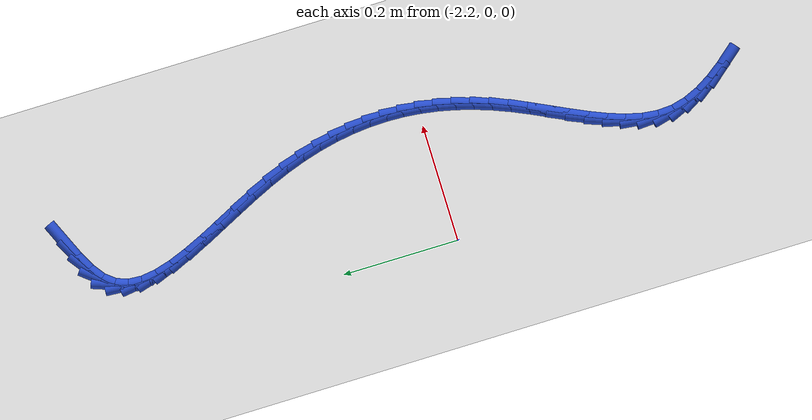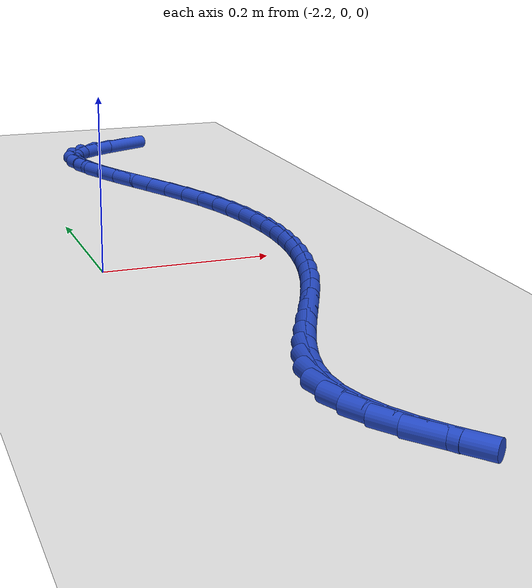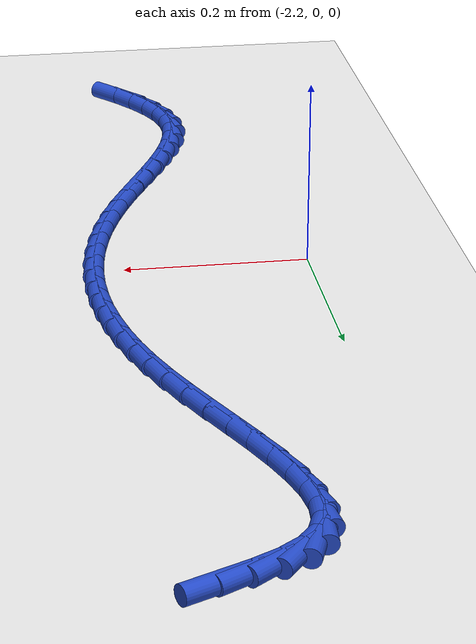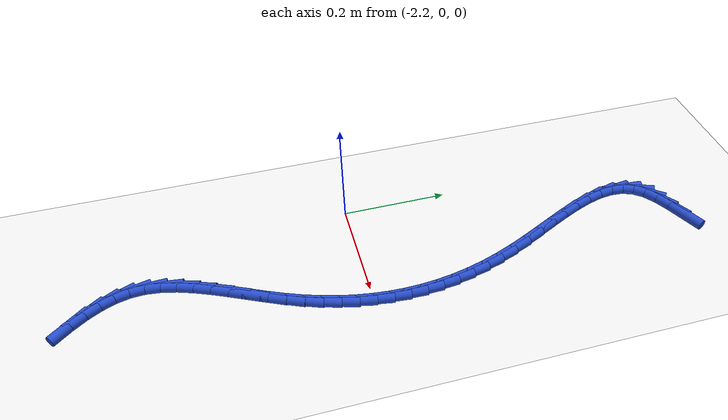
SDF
<sdf version="1.6">
 <world name="default">
  <model name="ground_plane">
   <static>1</static>
   <link name="link">
    <collision name="collision">
     <geometry><plane><normal>0 0 1</normal><size>100 100</size></plane></geometry>
     <surface><friction><ode><mu>100</mu><mu2>50</mu2></ode></friction></surface>
    </collision>
    <visual name="visual">
     <cast_shadows>0</cast_shadows>
     <geometry><plane><normal>0 0 1</normal><size>100 100</size></plane></geometry>
     <material>
      <script><uri>file://media/materials/scripts/gazebo.material</uri><name>Gazebo/WhiteGlow</name></script>
     </material>
    </visual>
   </link>
  </model>
  <model name="line">
   <link name="link_106">
    <pose>-2.011582424260394 0.6309163841337786 0.01 0 1.57 0.416559765220719</pose>
    <collision name="collision">
     <geometry><cylinder><radius>0.01</radius><length>0.08</length></cylinder></geometry>
    </collision>
    <visual name="visual">
     <material>
      <script><name>Gazebo/Blue</name><uri>file://media/materials/scripts/gazebo.material</uri></script>
     </material>
     <geometry><cylinder><radius>0.01</radius><length>0.08</length></cylinder></geometry>
    </visual>
   </link>
   <link name="link_107">
    <pose>-2.0407137078428197 0.6180271734563081 0.01 0 1.57 0.4868734654337942</pose>
    <collision name="collision">
     <geometry><cylinder><radius>0.01</radius><length>0.08</length></cylinder></geometry>
    </collision>
    <visual name="visual">
     <material>
      <script><name>Gazebo/Blue</name><uri>file://media/materials/scripts/gazebo.material</uri></script>
     </material>
     <geometry><cylinder><radius>0.01</radius><length>0.08</length></cylinder></geometry>
    </visual>
   </link>
   <link name="link_108">
    <pose>-2.0666683367514334 0.6042873437456167 0.01 0 1.57 0.6333787010661827</pose>
    <collision name="collision">
     <geometry><cylinder><radius>0.01</radius><length>0.08</length></cylinder></geometry>
    </collision>
    <visual name="visual">
     <material>
      <script><name>Gazebo/Blue</name><uri>file://media/materials/scripts/gazebo.material</uri></script>
     </material>
     <geometry><cylinder><radius>0.01</radius><length>0.08</length></cylinder></geometry>
    </visual>
   </link>
   <link name="link_109">
    <pose>-2.0878321514224747 0.5887467043664991 0.01 0 1.57 0.8907326659137043</pose>
    <collision name="collision">
     <geometry><cylinder><radius>0.01</radius><length>0.08</length></cylinder></geometry>
    </collision>
    <visual name="visual">
     <material>
      <script><name>Gazebo/Blue</name><uri>file://media/materials/scripts/gazebo.material</uri></script>
     </material>
     <geometry><cylinder><radius>0.01</radius><length>0.08</length></cylinder></geometry>
    </visual>
   </link>
   <link name="link_110">
    <pose>-2.1026154276303477 0.5704679142896184 0.01 0 1.57 1.2200347028196394</pose>
    <collision name="collision">
     <geometry><cylinder><radius>0.01</radius><length>0.08</length></cylinder></geometry>
    </collision>
    <visual name="visual">
     <material>
      <script><name>Gazebo/Blue</name><uri>file://media/materials/scripts/gazebo.material</uri></script>
     </material>
     <geometry><cylinder><radius>0.01</radius><length>0.08</length></cylinder></geometry>
    </visual>
   </link>
   <link name="link_111">
    <pose>-2.1104514790829505 0.5490516088436298 0.01 0 1.57 1.500958287772405</pose>
    <collision name="collision">
     <geometry><cylinder><radius>0.01</radius><length>0.08</length></cylinder></geometry>
    </collision>
    <visual name="visual">
     <material>
      <script><name>Gazebo/Blue</name><uri>file://media/materials/scripts/gazebo.material</uri></script>
     </material>
     <geometry><cylinder><radius>0.01</radius><length>0.08</length></cylinder></geometry>
    </visual>
   </link>
   <link name="link_112">
    <pose>-2.1121464980933644 0.5248203674882923 0.01 0 1.57 -1.4387192489499185</pose>
    <collision name="collision">
     <geometry><cylinder><radius>0.01</radius><length>0.08</length></cylinder></geometry>
    </collision>
    <visual name="visual">
     <material>
      <script><name>Gazebo/Blue</name><uri>file://media/materials/scripts/gazebo.material</uri></script>
     </material>
     <geometry><cylinder><radius>0.01</radius><length>0.08</length></cylinder></geometry>
    </visual>
   </link>
   <link name="link_113">
    <pose>-2.108602983507826 0.49814741359036196 0.01 0 1.57 -1.3032178489548198</pose>
    <collision name="collision">
     <geometry><cylinder><radius>0.01</radius><length>0.08</length></cylinder></geometry>
    </collision>
    <visual name="visual">
     <material>
      <script><name>Gazebo/Blue</name><uri>file://media/materials/scripts/gazebo.material</uri></script>
     </material>
     <geometry><cylinder><radius>0.01</radius><length>0.08</length></cylinder></geometry>
    </visual>
   </link>
   <link name="link_114">
    <pose>-2.100723434172573 0.4694059705165951 0.01 0 1.57 -1.214928853650688</pose>
    <collision name="collision">
     <geometry><cylinder><radius>0.01</radius><length>0.08</length></cylinder></geometry>
    </collision>
    <visual name="visual">
     <material>
      <script><name>Gazebo/Blue</name><uri>file://media/materials/scripts/gazebo.material</uri></script>
     </material>
     <geometry><cylinder><radius>0.01</radius><length>0.08</length></cylinder></geometry>
    </visual>
   </link>
   <link name="link_115">
    <pose>-2.0894103489338423 0.43896926163374805 0.01 0 1.57 -1.1597168554635666</pose>
    <collision name="collision">
     <geometry><cylinder><radius>0.01</radius><length>0.08</length></cylinder></geometry>
    </collision>
    <visual name="visual">
     <material>
      <script><name>Gazebo/Blue</name><uri>file://media/materials/scripts/gazebo.material</uri></script>
     </material>
     <geometry><cylinder><radius>0.01</radius><length>0.08</length></cylinder></geometry>
    </visual>
   </link>
   <link name="link_116">
    <pose>-2.075566226637873 0.40721051030857724 0.01 0 1.57 -1.1289316148877377</pose>
    <collision name="collision">
     <geometry><cylinder><radius>0.01</radius><length>0.08</length></cylinder></geometry>
    </collision>
    <visual name="visual">
     <material>
      <script><name>Gazebo/Blue</name><uri>file://media/materials/scripts/gazebo.material</uri></script>
     </material>
     <geometry><cylinder><radius>0.01</radius><length>0.08</length></cylinder></geometry>
    </visual>
   </link>
   <link name="link_117">
    <pose>-2.0600935661309006 0.3745029399078387 0.01 0 1.57 -1.1178504903717577</pose>
    <collision name="collision">
     <geometry><cylinder><radius>0.01</radius><length>0.08</length></cylinder></geometry>
    </collision>
    <visual name="visual">
     <material>
      <script><name>Gazebo/Blue</name><uri>file://media/materials/scripts/gazebo.material</uri></script>
     </material>
     <geometry><cylinder><radius>0.01</radius><length>0.08</length></cylinder></geometry>
    </visual>
   </link>
   <link name="link_118">
    <pose>-2.0438948662591634 0.3412197737982887 0.01 0 1.57 -1.124510511750247</pose>
    <collision name="collision">
     <geometry><cylinder><radius>0.01</radius><length>0.08</length></cylinder></geometry>
    </collision>
    <visual name="visual">
     <material>
      <script><name>Gazebo/Blue</name><uri>file://media/materials/scripts/gazebo.material</uri></script>
     </material>
     <geometry><cylinder><radius>0.01</radius><length>0.08</length></cylinder></geometry>
    </visual>
   </link>
   <link name="link_119">
    <pose>-2.027872625868899 0.30773423534668376 0.01 0 1.57 -1.149149400280007</pose>
    <collision name="collision">
     <geometry><cylinder><radius>0.01</radius><length>0.08</length></cylinder></geometry>
    </collision>
    <visual name="visual">
     <material>
      <script><name>Gazebo/Blue</name><uri>file://media/materials/scripts/gazebo.material</uri></script>
     </material>
     <geometry><cylinder><radius>0.01</radius><length>0.08</length></cylinder></geometry>
    </visual>
   </link>
   <link name="link_120">
    <pose>-2.0129293438063445 0.27441954791978046 0.01 0 1.57 -1.1924186582967617</pose>
    <collision name="collision">
     <geometry><cylinder><radius>0.01</radius><length>0.08</length></cylinder></geometry>
    </collision>
    <visual name="visual">
     <material>
      <script><name>Gazebo/Blue</name><uri>file://media/materials/scripts/gazebo.material</uri></script>
     </material>
     <geometry><cylinder><radius>0.01</radius><length>0.08</length></cylinder></geometry>
    </visual>
   </link>
   <link name="link_121">
    <pose>-1.9998874625179919 0.24161249036313415 0.01 0 1.57 -1.2444204902058373</pose>
    <collision name="collision">
     <geometry><cylinder><radius>0.01</radius><length>0.08</length></cylinder></geometry>
    </collision>
    <visual name="visual">
     <material>
      <script><name>Gazebo/Blue</name><uri>file://media/materials/scripts/gazebo.material</uri></script>
     </material>
     <geometry><cylinder><radius>0.01</radius><length>0.08</length></cylinder></geometry>
    </visual>
   </link>
   <link name="link_122">
    <pose>-1.9889775239059289 0.2093803873374091 0.01 0 1.57 -1.299722797258593</pose>
    <collision name="collision">
     <geometry><cylinder><radius>0.01</radius><length>0.08</length></cylinder></geometry>
    </collision>
    <visual name="visual">
     <material>
      <script><name>Gazebo/Blue</name><uri>file://media/materials/scripts/gazebo.material</uri></script>
     </material>
     <geometry><cylinder><radius>0.01</radius><length>0.08</length></cylinder></geometry>
    </visual>
   </link>
   <link name="link_123">
    <pose>-1.9801646868152654 0.1776697516946329 0.01 0 1.57 -1.3579638281475304</pose>
    <collision name="collision">
     <geometry><cylinder><radius>0.01</radius><length>0.08</length></cylinder></geometry>
    </collision>
    <visual name="visual">
     <material>
      <script><name>Gazebo/Blue</name><uri>file://media/materials/scripts/gazebo.material</uri></script>
     </material>
     <geometry><cylinder><radius>0.01</radius><length>0.08</length></cylinder></geometry>
    </visual>
   </link>
   <link name="link_124">
    <pose>-1.9734128563225226 0.14642652552676827 0.01 0 1.57 -1.418658414684836</pose>
    <collision name="collision">
     <geometry><cylinder><radius>0.01</radius><length>0.08</length></cylinder></geometry>
    </collision>
    <visual name="visual">
     <material>
      <script><name>Gazebo/Blue</name><uri>file://media/materials/scripts/gazebo.material</uri></script>
     </material>
     <geometry><cylinder><radius>0.01</radius><length>0.08</length></cylinder></geometry>
    </visual>
   </link>
   <link name="link_125">
    <pose>-1.968685937504221 0.11559665092577781 0.01 0 1.57 -1.4811765195036062</pose>
    <collision name="collision">
     <geometry><cylinder><radius>0.01</radius><length>0.08</length></cylinder></geometry>
    </collision>
    <visual name="visual">
     <material>
      <script><name>Gazebo/Blue</name><uri>file://media/materials/scripts/gazebo.material</uri></script>
     </material>
     <geometry><cylinder><radius>0.01</radius><length>0.08</length></cylinder></geometry>
    </visual>
   </link>
   <link name="link_126">
    <pose>-1.9659478354368818 0.08512606998362414 0.01 0 1.57 -1.5447663627294603</pose>
    <collision name="collision">
     <geometry><cylinder><radius>0.01</radius><length>0.08</length></cylinder></geometry>
    </collision>
    <visual name="visual">
     <material>
      <script><name>Gazebo/Blue</name><uri>file://media/materials/scripts/gazebo.material</uri></script>
     </material>
     <geometry><cylinder><radius>0.01</radius><length>0.08</length></cylinder></geometry>
    </visual>
   </link>
   <link name="link_127">
    <pose>-1.9651624551970255 0.05496072479226991 0.01 0 1.57 1.532997919942892</pose>
    <collision name="collision">
     <geometry><cylinder><radius>0.01</radius><length>0.08</length></cylinder></geometry>
    </collision>
    <visual name="visual">
     <material>
      <script><name>Gazebo/Blue</name><uri>file://media/materials/scripts/gazebo.material</uri></script>
     </material>
     <geometry><cylinder><radius>0.01</radius><length>0.08</length></cylinder></geometry>
    </visual>
   </link>
   <link name="link_128">
    <pose>-1.9662937018611735 0.02504655744367777 0.01 0 1.57 1.4697926893368156</pose>
    <collision name="collision">
     <geometry><cylinder><radius>0.01</radius><length>0.08</length></cylinder></geometry>
    </collision>
    <visual name="visual">
     <material>
      <script><name>Gazebo/Blue</name><uri>file://media/materials/scripts/gazebo.material</uri></script>
     </material>
     <geometry><cylinder><radius>0.01</radius><length>0.08</length></cylinder></geometry>
    </visual>
   </link>
   <link name="link_129">
    <pose>-1.9693054805058468 -0.004670489970189699 0.01 0 1.57 1.40804309663711</pose>
    <collision name="collision">
     <geometry><cylinder><radius>0.01</radius><length>0.08</length></cylinder></geometry>
    </collision>
    <visual name="visual">
     <material>
      <script><name>Gazebo/Blue</name><uri>file://media/materials/scripts/gazebo.material</uri></script>
     </material>
     <geometry><cylinder><radius>0.01</radius><length>0.08</length></cylinder></geometry>
    </visual>
   </link>
   <link name="link_130">
    <pose>-1.9741616962075654 -0.0342444753573698 0.01 0 1.57 1.3484995534940714</pose>
    <collision name="collision">
     <geometry><cylinder><radius>0.01</radius><length>0.08</length></cylinder></geometry>
    </collision>
    <visual name="visual">
     <material>
      <script><name>Gazebo/Blue</name><uri>file://media/materials/scripts/gazebo.material</uri></script>
     </material>
     <geometry><cylinder><radius>0.01</radius><length>0.08</length></cylinder></geometry>
    </visual>
   </link>
   <link name="link_131">
    <pose>-1.980826254042851 -0.0637294566258999 0.01 0 1.57 1.291790173073292</pose>
    <collision name="collision">
     <geometry><cylinder><radius>0.01</radius><length>0.08</length></cylinder></geometry>
    </collision>
    <visual name="visual">
     <material>
      <script><name>Gazebo/Blue</name><uri>file://media/materials/scripts/gazebo.material</uri></script>
     </material>
     <geometry><cylinder><radius>0.01</radius><length>0.08</length></cylinder></geometry>
    </visual>
   </link>
   <link name="link_132">
    <pose>-1.9892630590882239 -0.0931794916838174 0.01 0 1.57 1.2383977572432512</pose>
    <collision name="collision">
     <geometry><cylinder><radius>0.01</radius><length>0.08</length></cylinder></geometry>
    </collision>
    <visual name="visual">
     <material>
      <script><name>Gazebo/Blue</name><uri>file://media/materials/scripts/gazebo.material</uri></script>
     </material>
     <geometry><cylinder><radius>0.01</radius><length>0.08</length></cylinder></geometry>
    </visual>
   </link>
   <link name="link_133">
    <pose>-1.9994360164202063 -0.12264863843915967 0.01 0 1.57 1.1886544185287797</pose>
    <collision name="collision">
     <geometry><cylinder><radius>0.01</radius><length>0.08</length></cylinder></geometry>
    </collision>
    <visual name="visual">
     <material>
      <script><name>Gazebo/Blue</name><uri>file://media/materials/scripts/gazebo.material</uri></script>
     </material>
     <geometry><cylinder><radius>0.01</radius><length>0.08</length></cylinder></geometry>
    </visual>
   </link>
   <link name="link_134">
    <pose>-2.0113090275414858 -0.15219095399414942 0.01 0 1.57 1.1461420337934953</pose>
    <collision name="collision">
     <geometry><cylinder><radius>0.01</radius><length>0.08</length></cylinder></geometry>
    </collision>
    <visual name="visual">
     <material>
      <script><name>Gazebo/Blue</name><uri>file://media/materials/scripts/gazebo.material</uri></script>
     </material>
     <geometry><cylinder><radius>0.01</radius><length>0.08</length></cylinder></geometry>
    </visual>
   </link>
   <link name="link_135">
    <pose>-2.02471082532422 -0.1818300181176419 0.01 0 1.57 1.1223163249264783</pose>
    <collision name="collision">
     <geometry><cylinder><radius>0.01</radius><length>0.08</length></cylinder></geometry>
    </collision>
    <visual name="visual">
     <material>
      <script><name>Gazebo/Blue</name><uri>file://media/materials/scripts/gazebo.material</uri></script>
     </material>
     <geometry><cylinder><radius>0.01</radius><length>0.08</length></cylinder></geometry>
    </visual>
   </link>
   <link name="link_136">
    <pose>-2.0389769984834785 -0.2114782182196256 0.01 0 1.57 1.118544372463432</pose>
    <collision name="collision">
     <geometry><cylinder><radius>0.01</radius><length>0.08</length></cylinder></geometry>
    </collision>
    <visual name="visual">
     <material>
      <script><name>Gazebo/Blue</name><uri>file://media/materials/scripts/gazebo.material</uri></script>
     </material>
     <geometry><cylinder><radius>0.01</radius><length>0.08</length></cylinder></geometry>
    </visual>
   </link>
   <link name="link_137">
    <pose>-2.0533307044000306 -0.24102259109994423 0.01 0 1.57 1.1347799922767294</pose>
    <collision name="collision">
     <geometry><cylinder><radius>0.01</radius><length>0.08</length></cylinder></geometry>
    </collision>
    <visual name="visual">
     <material>
      <script><name>Gazebo/Blue</name><uri>file://media/materials/scripts/gazebo.material</uri></script>
     </material>
     <geometry><cylinder><radius>0.01</radius><length>0.08</length></cylinder></geometry>
    </visual>
   </link>
   <link name="link_138">
    <pose>-2.0669951004546463 -0.27035017355844154 0.01 0 1.57 1.1726069388033151</pose>
    <collision name="collision">
     <geometry><cylinder><radius>0.01</radius><length>0.08</length></cylinder></geometry>
    </collision>
    <visual name="visual">
     <material>
      <script><name>Gazebo/Blue</name><uri>file://media/materials/scripts/gazebo.material</uri></script>
     </material>
     <geometry><cylinder><radius>0.01</radius><length>0.08</length></cylinder></geometry>
    </visual>
   </link>
   <link name="link_139">
    <pose>-2.0791933440280954 -0.29934800239496145 0.01 0 1.57 1.2353400275108146</pose>
    <collision name="collision">
     <geometry><cylinder><radius>0.01</radius><length>0.08</length></cylinder></geometry>
    </collision>
    <visual name="visual">
     <material>
      <script><name>Gazebo/Blue</name><uri>file://media/materials/scripts/gazebo.material</uri></script>
     </material>
     <geometry><cylinder><radius>0.01</radius><length>0.08</length></cylinder></geometry>
    </visual>
   </link>
   <link name="link_140">
    <pose>-2.0891485925011484 -0.3279031144093476 0.01 0 1.57 1.3279851720468283</pose>
    <collision name="collision">
     <geometry><cylinder><radius>0.01</radius><length>0.08</length></cylinder></geometry>
    </collision>
    <visual name="visual">
     <material>
      <script><name>Gazebo/Blue</name><uri>file://media/materials/scripts/gazebo.material</uri></script>
     </material>
     <geometry><cylinder><radius>0.01</radius><length>0.08</length></cylinder></geometry>
    </visual>
   </link>
   <link name="link_141">
    <pose>-2.096084003254572 -0.35590254640144375 0.01 0 1.57 1.4564549527050064</pose>
    <collision name="collision">
     <geometry><cylinder><radius>0.01</radius><length>0.08</length></cylinder></geometry>
    </collision>
    <visual name="visual">
     <material>
      <script><name>Gazebo/Blue</name><uri>file://media/materials/scripts/gazebo.material</uri></script>
     </material>
     <geometry><cylinder><radius>0.01</radius><length>0.08</length></cylinder></geometry>
    </visual>
   </link>
   <link name="link_142">
    <pose>-2.099222733669139 -0.3832333351710938 0.01 0 1.57 -1.5171110027889583</pose>
    <collision name="collision">
     <geometry><cylinder><radius>0.01</radius><length>0.08</length></cylinder></geometry>
    </collision>
    <visual name="visual">
     <material>
      <script><name>Gazebo/Blue</name><uri>file://media/materials/scripts/gazebo.material</uri></script>
     </material>
     <geometry><cylinder><radius>0.01</radius><length>0.08</length></cylinder></geometry>
    </visual>
   </link>
   <link name="link_143">
    <pose>-2.097795986880519 -0.4097839031200019 0.01 0 1.57 -1.3325111067475763</pose>
    <collision name="collision">
     <geometry><cylinder><radius>0.01</radius><length>0.08</length></cylinder></geometry>
    </collision>
    <visual name="visual">
     <material>
      <script><name>Gazebo/Blue</name><uri>file://media/materials/scripts/gazebo.material</uri></script>
     </material>
     <geometry><cylinder><radius>0.01</radius><length>0.08</length></cylinder></geometry>
    </visual>
   </link>
   <link name="link_144">
    <pose>-2.0915422516676676 -0.4355300349843837 0.01 0 1.57 -1.1725497522430461</pose>
    <collision name="collision">
     <geometry><cylinder><radius>0.01</radius><length>0.08</length></cylinder></geometry>
    </collision>
    <visual name="visual">
     <material>
      <script><name>Gazebo/Blue</name><uri>file://media/materials/scripts/gazebo.material</uri></script>
     </material>
     <geometry><cylinder><radius>0.01</radius><length>0.08</length></cylinder></geometry>
    </visual>
   </link>
   <link name="link_145">
    <pose>-2.081000754588637 -0.46058541477404813 0.01 0 1.57 -1.0447554786481128</pose>
    <collision name="collision">
     <geometry><cylinder><radius>0.01</radius><length>0.08</length></cylinder></geometry>
    </collision>
    <visual name="visual">
     <material>
      <script><name>Gazebo/Blue</name><uri>file://media/materials/scripts/gazebo.material</uri></script>
     </material>
     <geometry><cylinder><radius>0.01</radius><length>0.08</length></cylinder></geometry>
    </visual>
   </link>
   <link name="link_146">
    <pose>-2.066781319273334 -0.4850758843926648 0.01 0 1.57 -0.9475804054931172</pose>
    <collision name="collision">
     <geometry><cylinder><radius>0.01</radius><length>0.08</length></cylinder></geometry>
    </collision>
    <visual name="visual">
     <material>
      <script><name>Gazebo/Blue</name><uri>file://media/materials/scripts/gazebo.material</uri></script>
     </material>
     <geometry><cylinder><radius>0.01</radius><length>0.08</length></cylinder></geometry>
    </visual>
   </link>
   <link name="link_147">
    <pose>-2.049493769351669 -0.5091272857439011 0.01 0 1.57 -0.876953020964416</pose>
    <collision name="collision">
     <geometry><cylinder><radius>0.01</radius><length>0.08</length></cylinder></geometry>
    </collision>
    <visual name="visual">
     <material>
      <script><name>Gazebo/Blue</name><uri>file://media/materials/scripts/gazebo.material</uri></script>
     </material>
     <geometry><cylinder><radius>0.01</radius><length>0.08</length></cylinder></geometry>
    </visual>
   </link>
  </model>
 </world>
</sdf>
